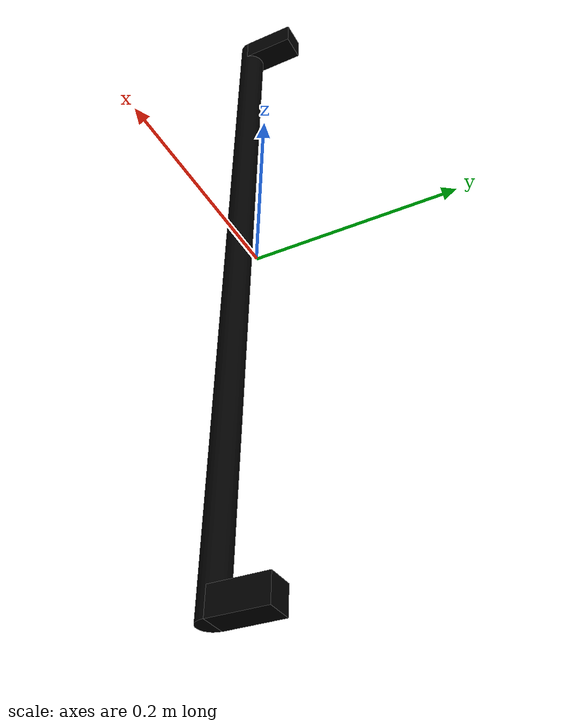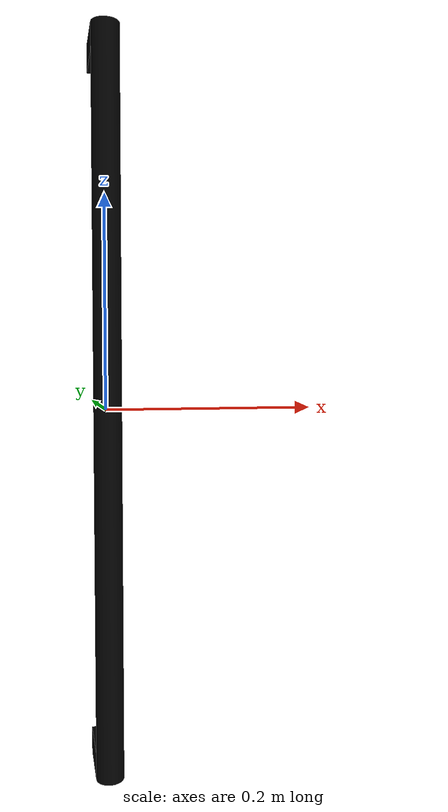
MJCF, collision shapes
<?xml version="1.0" ?>
<mujoco model="model">
    <compiler angle="radian"/>
    <asset>
        <mesh file="visuals/CabinetHandle028.obj" name="mesh"/>
        <texture file="visuals/T_BC001.png" name="tex" type="2d"/>
        <material name="mat" rgba="1 1 1 1.0" texture="tex" shininess="1" specular="1"/>
    </asset>
    <default>
        <default class="visual">
            <geom conaffinity="0" contype="0" group="1" type="mesh"/>
        </default>
        <default class="collision">
            <geom group="0" rgba="0 0 0 0"/>
        </default>
        <default class="spawn">
            <geom group="0" rgba="0 0 0 0" contype="0" conaffinity="0"/>
            <site group="0" rgba="0 0 0 0"/>
        </default>
    </default>
    <worldbody>
        <body>
            <body name="object">
                <geom mesh="mesh" type="mesh" solimp="0.998 0.998 0.001" solref="0.001 1" density="100" friction="0.95 0.3 0.1" class="visual" material="mat"/>
                <geom class="collision" type="cylinder" pos="9.919691365212202e-06 -0.020833196118474007 7.5852673035115e-05" size="0.01295510958880186 0.3440512716770172" quat="1.0 0.0 0.0 0.0"/>
                <geom class="collision" type="box" pos="1.4916430473022046e-06 0.006751904729753733 0.3315466642379761" size="0.013045414350926876 0.026863574981689453 0.012541929259896278" quat="1.0 0.0 0.0 0.0" name="handle_connector"/>
                <geom class="collision" type="box" pos="1.4916430473022046e-06 0.006751904729753733 -0.33153897523880005" size="0.013045414350926876 0.026863574981689453 0.012541929259896278" quat="1.0 0.0 0.0 0.0"/>
            </body>
        </body>
    </worldbody>
    <actuator/>
</mujoco>
